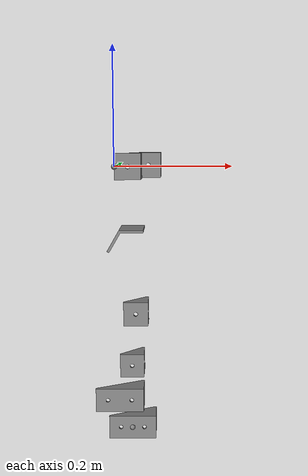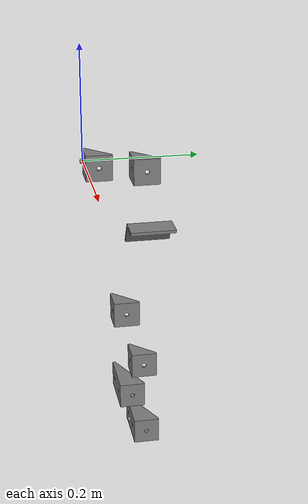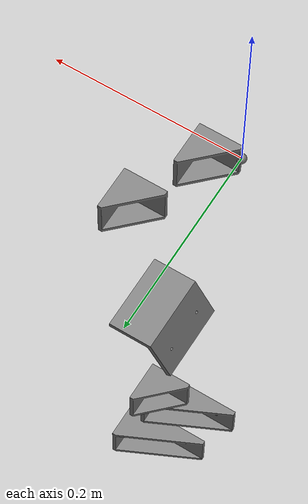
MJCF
<mujoco model="a7_left">
  <compiler meshdir="meshes" discardvisual="false" autolimits="true" angle="radian" eulerseq="XYZ"/>
  <option/>

  <default>
    <default class="arm_a7_visual">
      <geom type="mesh" contype="0" conaffinity="0" group="1"/>
    </default>
    <default class="arm_a7_collision">
      <geom type="mesh" contype="1" conaffinity="1" group="3"/>
    </default>
  </default>

  <asset>
    <mesh name="L1" file="L1_Link.STL"/>
    <mesh name="L2" file="L2_Link.STL"/>
    <mesh name="L3" file="L3_Link.STL"/>
    <mesh name="L4" file="L4_Link.STL"/>
    <mesh name="L5" file="L5_Link.STL"/>
    <mesh name="L6" file="L6_Link.STL"/>
    <mesh name="L7" file="L7_Link.STL"/>
  </asset>

  <worldbody>
    <body name="L_arm_root" pos="0 0 0">
      <site name="base_mount" pos="0 0 0"/>

      <body name="L1_Link" pos="0 0 0">
        <inertial pos="0.0027032 0.063353 -7.0134E-05" mass="0.33055"
                  fullinertia="0.00042151 0.0001625 0.00035692 -1.546E-05 3.9753E-08 -1.8351E-06"/>
        <joint name="L1_Joint" type="hinge" axis="0 1 0"
               range="-2.97 1.05" damping="20" frictionloss="0.0" armature="0.01"/>
        <geom class="arm_a7_visual" mesh="L1"/>
        <geom class="arm_a7_collision" mesh="L1"/>
        <body name="L2_Link" pos="0.0328 0.075 0">
          <inertial pos="-0.031961 7.4411E-06 -0.068645" mass="0.27885"
                    fullinertia="0.00052682 0.00044111 0.00018578 -3.1336E-09 1.3197E-06 -1.345E-08"/>
          <joint name="L2_Joint" type="hinge" axis="1 0 0"
                 range="-0.35 3.49" damping="20" frictionloss="0.0" armature="0.01"/>
          <geom class="arm_a7_visual" mesh="L2"/>
          <geom class="arm_a7_collision" mesh="L2"/>
          <body name="L3_Link" pos="-0.0328 0 -0.12">
            <inertial pos="0.0040238 -0.00052561 -0.10122" mass="0.2957"
                      fullinertia="0.00068049 0.00063555 0.00015786 5.5029E-08 4.8841E-05 -1.3653E-07"/>
            <joint name="L3_Joint" type="hinge" axis="0 0 -1"
                   range="-2.79 2.79" damping="20" frictionloss="0.0" armature="0.01"/>
            <geom class="arm_a7_visual" mesh="L3"/>
            <geom class="arm_a7_collision" mesh="L3"/>
            <body name="L4_Link" pos="0.0095 -0.0325 -0.15">
              <inertial pos="-0.009595 0.031592 -0.070292" mass="0.25138"
                        fullinertia="0.00028685 0.00034007 0.00015409 2.9939E-07 -6.4998E-06 1.1696E-06"/>
              <joint name="L4_Joint" type="hinge" axis="0 -1 0"
                     range="-0.21 2.355" damping="20" frictionloss="0.0" armature="0.01"/>
              <geom class="arm_a7_visual" mesh="L4"/>
              <geom class="arm_a7_collision" mesh="L4"/>
              <body name="L5_Link" pos="-0.0095 0.0325 -0.11">
                <inertial pos="-5.4767E-05 0.0077932 -0.055307" mass="0.13959"
                          fullinertia="5.9164E-05 7.6825E-05 4.7893E-05 8.3634E-08 -9.5553E-09 -8.8072E-06"/>
                <joint name="L5_Joint" type="hinge" axis="0 0 -1"
                       range="-2.79 2.79" damping="20" frictionloss="0.0" armature="0.01"/>
                <geom class="arm_a7_visual" mesh="L5"/>
                <geom class="arm_a7_collision" mesh="L5"/>
                <body name="L6_Link" pos="0 -0.022 -0.06">
                  <inertial pos="-0.005396 0.017491 -0.05756" mass="0.16212"
                            fullinertia="0.00013559 9.78E-05 6.6925E-05 -3.8646E-06 3.0483E-06 1.7635E-05"/>
                  <joint name="L6_Joint" type="hinge" axis="0 -1 0"
                         range="-1.57 1.57" damping="20" frictionloss="0.0" armature="0.01"/>
                  <geom class="arm_a7_visual" mesh="L6"/>
                  <geom class="arm_a7_collision" mesh="L6"/>
                  <body name="L7_Link" pos="0.0225 0.022 -0.064">
                    <inertial pos="-0.087101 -0.02791 -0.0326" mass="0.30217"
                              fullinertia="0.00039168 0.00039614 0.00061061 -0.00016382 9.7979E-05 6.7457E-05"/>
                    <joint name="L7_Joint" type="hinge" axis="1 0 0"
                           range="-1.57 1.57" damping="20" frictionloss="0.0" armature="0.01"/>
                    <geom class="arm_a7_visual" mesh="L7"/>
                    <geom class="arm_a7_collision" mesh="L7"/>
                    <site name="tool0" pos="0 0 0"/>
                  </body>
                </body>
              </body>
            </body>
          </body>
        </body>
      </body>
    </body>
  </worldbody>

  <actuator>
    <position name="L1_Joint_act" joint="L1_Joint" kp="2000" kv="0" ctrlrange="-2.97 1.05"/>
    <position name="L2_Joint_act" joint="L2_Joint" kp="2000" kv="0" ctrlrange="-0.35 3.49"/>
    <position name="L3_Joint_act" joint="L3_Joint" kp="2000" kv="0" ctrlrange="-2.79 2.79"/>
    <position name="L4_Joint_act" joint="L4_Joint" kp="2000" kv="0" ctrlrange="-0.21 2.355"/>
    <position name="L5_Joint_act" joint="L5_Joint" kp="2000" kv="0" ctrlrange="-2.79 2.79"/>
    <position name="L6_Joint_act" joint="L6_Joint" kp="2000" kv="0" ctrlrange="-1.57 1.57"/>
    <position name="L7_Joint_act" joint="L7_Joint" kp="2000" kv="0" ctrlrange="-1.57 1.57"/>
  </actuator>

  <contact>
    <exclude body1="L1_Link" body2="L2_Link"/>
    <exclude body1="L2_Link" body2="L3_Link"/>
    <exclude body1="L3_Link" body2="L4_Link"/>
    <exclude body1="L4_Link" body2="L5_Link"/>
    <exclude body1="L5_Link" body2="L6_Link"/>
    <exclude body1="L6_Link" body2="L7_Link"/>
  </contact>
</mujoco>
